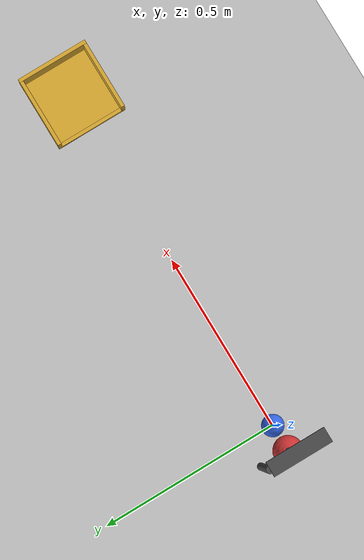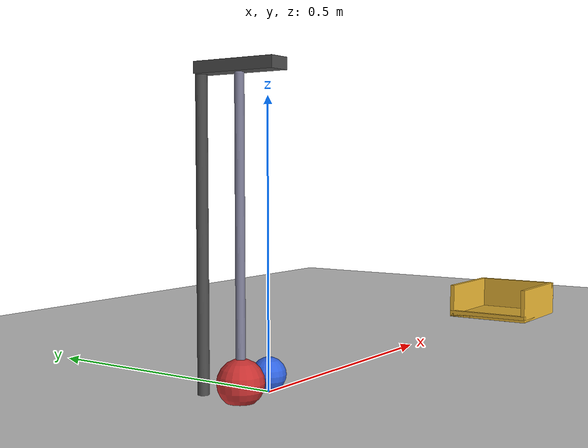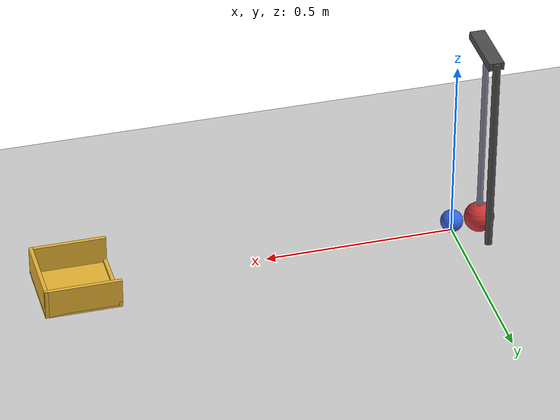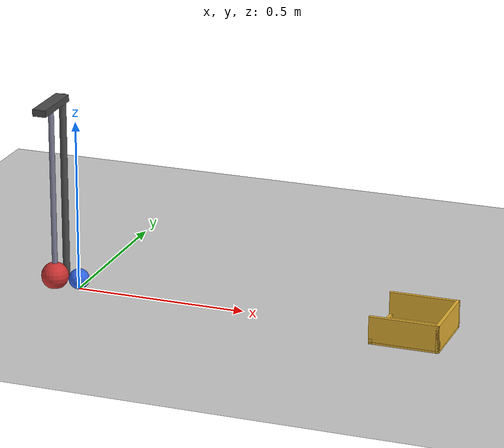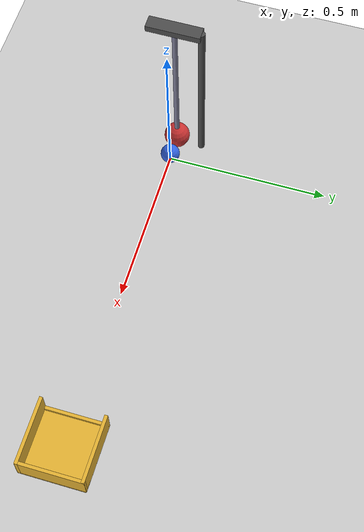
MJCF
<mujoco model="pendulum_ball_cup">
  <option timestep="0.002" gravity="0 0 -9.81"/>

  <visual>
    <global offwidth="1280" offheight="720"/>
  </visual>

  <worldbody>
    <light name="sun" pos="0.5 -1 2" dir="0 0.5 -1" directional="true"/>
    <geom name="floor" type="plane" size="3 3 0.1" rgba="0.8 0.8 0.8 1"/>

    <!-- static support for the pendulum (visual only, no collisions) -->
    <body name="support" pos="-0.075 0 0.53">
      <geom name="support_beam" type="box" size="0.02 0.08 0.01" pos="0 0 0.012" contype="0" conaffinity="0" rgba="0.3 0.3 0.3 1"/>
      <geom name="support_post" type="cylinder" fromto="0 0.08 0.02 0 0.08 -0.53" size="0.01" contype="0" conaffinity="0" rgba="0.3 0.3 0.3 1"/>
    </body>

    <!-- pendulum: pivot 0.5 m above the bob centre; bob centre at ball-centre height at the bottom of the swing -->
    <body name="pendulum" pos="-0.075 0 0.53">
      <joint name="pendulum_hinge" type="hinge" axis="0 1 0" pos="0 0 0"/>
      <geom name="pendulum_rod" type="capsule" fromto="0 0 0 0 0 -0.46" size="0.008" mass="0.05" contype="0" conaffinity="0" rgba="0.5 0.5 0.6 1"/>
      <geom name="pendulum_bob" type="sphere" pos="0 0 -0.5" size="0.04" mass="0.5" contype="0" conaffinity="0" rgba="0.8 0.2 0.2 1"/>
    </body>

    <!-- ball resting on the floor at the origin -->
    <body name="ball" pos="0 0 0.03">
      <freejoint name="ball_free"/>
      <geom name="ball" type="sphere" size="0.03" mass="0.1" condim="6" friction="1 0.005 0.0002" rgba="0.2 0.4 0.9 1"/>
    </body>

    <!-- cup centred 1 m from the ball start: low front lip, tall back and side walls -->
    <body name="cup" pos="1 0 0">
      <geom name="cup_base" type="box" size="0.1 0.1 0.003" pos="0 0 0.003" rgba="0.9 0.7 0.2 1"/>
      <geom name="cup_front" type="box" size="0.005 0.1 0.0075" pos="-0.095 0 0.0075" rgba="0.9 0.7 0.2 1"/>
      <geom name="cup_back" type="box" size="0.005 0.1 0.04" pos="0.095 0 0.04" rgba="0.9 0.7 0.2 1"/>
      <geom name="cup_left" type="box" size="0.1 0.005 0.04" pos="0 0.095 0.04" rgba="0.9 0.7 0.2 1"/>
      <geom name="cup_right" type="box" size="0.1 0.005 0.04" pos="0 -0.095 0.04" rgba="0.9 0.7 0.2 1"/>
    </body>
  </worldbody>

  <contact>
    <!-- the only pendulum contact: a mildly elastic, numerically stable strike with the ball -->
    <pair name="strike" geom1="pendulum_bob" geom2="ball" condim="3" friction="0.2 0.2 0.005 0.0001 0.0001" solref="0.01 0.3"/>
  </contact>

  <keyframe>
    <key name="start" qpos="0.785 0 0 0.03 1 0 0 0" qvel="0 0 0 0 0 0 0"/>
  </keyframe>
</mujoco>
